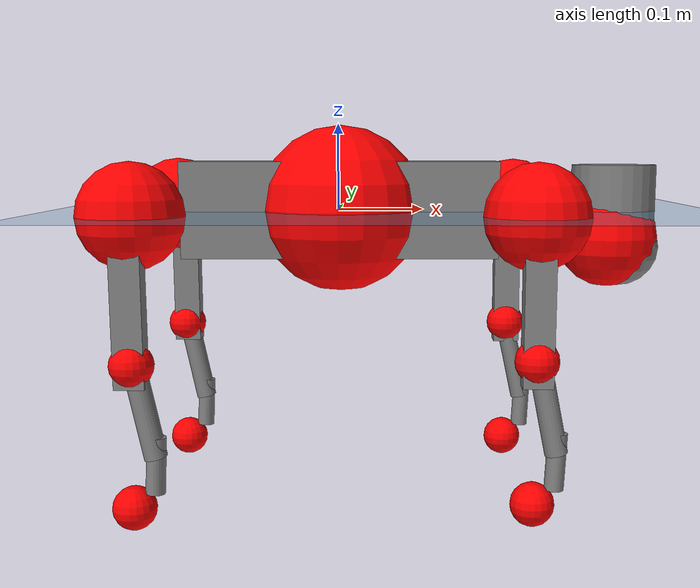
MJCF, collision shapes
<mujoco model="go2">
  <compiler angle="radian" assetdir="assets" balanceinertia="true" inertiafromgeom="false"/>

  <option timestep="0.005" density="1.2" viscosity="2e-05"/>

  <size nkey="1"/>

  <visual>
    <quality shadowsize="8192"/>
    <map shadowclip="0.5"/>
  </visual>

  <default>
    <default class="/">
      <geom contype="0" conaffinity="0" group="1" solref="-1000 -80"/>
      <site size="0.01 0.005 0.005" group="5"/>
      <general forcelimited="true" biastype="affine" gainprm="20" biasprm="0 -20 -0.5"/>
      <default class="go2">
        <joint armature="0.01" damping="0.01" frictionloss="0.2"/>
        <geom condim="1" margin="0.001"/>
        <default class="visual">
          <geom type="mesh" group="2"/>
        </default>
        <default class="collision">
          <geom group="3"/>
          <default class="foot">
            <geom size="0.022 0 0" condim="6" priority="1" friction="0.8 0.02 0.01" solimp="0.015 1 0.022"/>
          </default>
        </default>
        <default class="reward_collision_sphere">
          <geom group="5" rgba="1 0 0 1"/>
        </default>
      </default>
    </default>
  </default>

  <asset>
    <texture type="skybox" colorspace="auto" name="//unnamed_texture_0" builtin="gradient" rgb1="0.95 0.95 0.95" rgb2="0.95 0.95 0.95" width="100" height="600"/>
    <texture type="2d" colorspace="auto" name="texplane" builtin="checker" rgb1="0.345 0.575 0.748" rgb2="0.345 0.575 0.748" markrgb="1 1 1" width="512" height="512"/>
    <material name="MatPlane" class="/" texture="texplane" texuniform="true" texrepeat="2 2" specular="0.9"/>
    <material name="metal" class="/" rgba="0.9 0.95 0.95 1"/>
    <material name="black" class="/" rgba="0 0 0 1"/>
    <material name="white" class="/"/>
    <material name="gray" class="/" rgba="0.671705 0.692426 0.77427 1"/>
    <mesh name="base_0" class="/" file="base_0.obj"/>
    <mesh name="base_1" class="/" file="base_1.obj"/>
    <mesh name="base_2" class="/" file="base_2.obj"/>
    <mesh name="base_3" class="/" file="base_3.obj"/>
    <mesh name="base_4" class="/" file="base_4.obj"/>
    <mesh name="hip_0" class="/" file="hip_0.obj"/>
    <mesh name="hip_1" class="/" file="hip_1.obj"/>
    <mesh name="thigh_0" class="/" file="thigh_0.obj"/>
    <mesh name="thigh_1" class="/" file="thigh_1.obj"/>
    <mesh name="thigh_mirror_0" class="/" file="thigh_mirror_0.obj"/>
    <mesh name="thigh_mirror_1" class="/" file="thigh_mirror_1.obj"/>
    <mesh name="calf_0" class="/" file="calf_0.obj"/>
    <mesh name="calf_1" class="/" file="calf_1.obj"/>
    <mesh name="calf_mirror_0" class="/" file="calf_mirror_0.obj"/>
    <mesh name="calf_mirror_1" class="/" file="calf_mirror_1.obj"/>
    <mesh name="foot" class="/" file="foot.obj"/>
  </asset>

  <worldbody>
    <geom name="floor" class="/" size="100 100 0.125" type="plane" group="0" material="MatPlane"/>
    <light name="toplight_shadow" class="/" pos="0 0 5" dir="0.0990148 0.0990148 -0.990148" type="directional" ambient="0.04 0.04 0.04" diffuse="0.55 0.55 0.55" specular="0.12 0.12 0.12"/>
    <light name="toplight_fill" class="/" pos="0 0 5" dir="0.0990148 0.0990148 -0.990148" type="directional" castshadow="false" ambient="0.04 0.04 0.04" diffuse="0.3 0.3 0.3" specular="0.08 0.08 0.08"/>
    <body name="trunk" childclass="go2" pos="0.00259581 0.00109328 0.000659056" quat="1 6.55361e-05 -0.000144948 -0.000123086">
      <inertial pos="0.0242184 0.00040989 -0.00398325" quat="-0.0100401 0.714499 -0.00663837 0.699533" mass="6.60511" diaginertia="0.215476 0.137613 0.00587894"/>
      <joint name="//unnamed_joint_0" type="free" armature="0" damping="0" frictionloss="0"/>
      <geom name="//unnamed_geom_1" class="visual" material="black" mesh="base_0"/>
      <geom name="//unnamed_geom_2" class="visual" material="black" mesh="base_1"/>
      <geom name="//unnamed_geom_3" class="visual" material="black" mesh="base_2"/>
      <geom name="//unnamed_geom_4" class="visual" material="white" mesh="base_3"/>
      <geom name="//unnamed_geom_5" class="visual" material="gray" mesh="base_4"/>
      <geom name="trunk_1" class="collision" size="0.184627 0.0458867 0.0559474" type="box"/>
      <geom name="trunk_2" class="collision" size="0.0490767 0.044169" pos="0.323491 0 0.00752385" type="cylinder"/>
      <geom name="trunk_3" class="collision" size="0.0461321" pos="0.332571 0 -0.0451431"/>
      <geom name="//unnamed_geom_9" class="reward_collision_sphere" size="0.0981534"/>
      <geom name="//unnamed_geom_10" class="reward_collision_sphere" size="0.058892" pos="0.317816 0 -0.0338573"/>
      <site name="imu" pos="-0.0294229 0.00532356 0.0212266" size="0.00981534"/>
      <camera name="track" pos="0 -2.11432 0" quat="0.707107 0.707107 0 0" mode="trackcom"/>
      <camera name="ego_camera" pos="0.354137 0 0.0338573" quat="-0.5 -0.5 0.5 0.5"/>
      <body name="FL_hip" pos="0.218564 0.049334 -0.00174978" quat="0.999999 5.13465e-05 -0.000492555 -0.00111022">
        <inertial pos="-0.00852047 0.00111839 -0.000655717" quat="0.495964 0.499595 0.50583 0.498558" mass="0.645963" diaginertia="0.00167959 0.000759098 0.000117192"/>
        <joint name="FL_hip_joint" pos="0 0 0" axis="0.99998 -0.00587671 0.00233681" range="-1.03564 1.05004" armature="0.00880223" damping="0.00891958" frictionloss="0.214908"/>
        <geom name="//unnamed_geom_11" class="visual" material="metal" mesh="hip_0"/>
        <geom name="//unnamed_geom_12" class="visual" material="gray" mesh="hip_1"/>
        <geom name="//unnamed_geom_13" class="collision" size="0.0451506 0.0196307" pos="0 0.0845729 0" quat="0.707107 0.707107 0 0" type="cylinder"/>
        <geom name="//unnamed_geom_14" class="reward_collision_sphere" size="0.058892" pos="0 0.0740013 0"/>
        <body name="FL_thigh" pos="-0.00318361 0.100244 -0.00137549" quat="1 -0.000107185 -0.000297178 0.00094702">
          <inertial pos="-0.00373936 -0.0236585 -0.0264429" quat="0.825378 0.081739 -0.0179635 0.558343" mass="1.07744" diaginertia="0.0111579 0.00766042 0.00020954"/>
          <joint name="FL_thigh_joint" pos="0 0 0" axis="-0.0163319 0.999829 0.00870791" range="-1.54351 3.49068" armature="0.0113028" damping="0" frictionloss="0.17314"/>
          <geom name="//unnamed_geom_15" class="visual" material="metal" mesh="thigh_0"/>
          <geom name="//unnamed_geom_16" class="visual" material="gray" mesh="thigh_1"/>
          <geom name="//unnamed_geom_17" class="collision" size="0.104533 0.0120238 0.0166861" pos="0 0 -0.080129" quat="0.707107 0 0.707107 0" type="box"/>
          <body name="FL_calf" pos="-0.000756099 -0.00206564 -0.159319" quat="0.999999 0.000158827 -0.00138336 6.98083e-05">
            <inertial pos="0.00910107 0.000118355 -0.105523" quat="0.717719 -0.00440561 -0.00359412 0.69631" mass="0.242676" diaginertia="0.00279239 0.00199744 1.27553e-05"/>
            <joint name="FL_calf_joint" pos="0 0 0" axis="-0.000979835 0.999999 0.000293496" stiffness="0.00193835" range="-2.72804 -0.818554" armature="0.0101677" damping="0" frictionloss="0.187311"/>
            <geom name="//unnamed_geom_18" class="visual" material="gray" mesh="calf_0"/>
            <geom name="//unnamed_geom_19" class="visual" material="black" mesh="calf_1"/>
            <geom name="FL_calf0" class="collision" size="0.0117784 0.058892" pos="0.00908045 0 -0.0451431" quat="0.994493 0 -0.104807 0" type="cylinder"/>
            <geom name="//unnamed_geom_21" class="collision" size="0.0107969 0.0318999" pos="0.0227011 0 -0.111353" quat="0.999688 0 0.0249974 0" type="cylinder"/>
            <geom name="//unnamed_geom_22" class="visual" pos="0 0 -0.160258" quat="1 0 0 0" material="black" mesh="foot"/>
            <geom name="FL_foot" class="foot" size="0.021253" pos="-0.00227011 0 -0.160258"/>
            <geom name="//unnamed_geom_24" class="reward_collision_sphere" size="0.0245384"/>
            <geom name="//unnamed_geom_25" class="reward_collision_sphere" size="0.0245384" pos="-0.00227011 0 -0.160258"/>
            <site name="FL_foot" class="foot" pos="-0.00227011 0 -0.160258" size="0.00981534"/>
          </body>
        </body>
      </body>
      <body name="FR_hip" pos="0.217857 -0.04722 -0.00179525" quat="1 0.000213576 -2.07955e-05 0.000338774">
        <inertial pos="-0.00411804 -0.00184286 -0.00184797" quat="0.49227 0.514388 0.493197 0.499832" mass="0.650252" diaginertia="0.00172136 0.000781807 0.000118685"/>
        <joint name="FR_hip_joint" pos="0 0 0" axis="0.999921 0.00343475 0.0120611" range="-1.09698 1.02853" armature="0.00971076" damping="0.0181094" frictionloss="0.169127"/>
        <geom name="//unnamed_geom_26" class="visual" pos="0 2.65509e-09 1.13882e-07" quat="4.63268e-05 1 0 0" material="metal" mesh="hip_0"/>
        <geom name="//unnamed_geom_27" class="visual" pos="0 4.30422e-09 -2.81675e-07" quat="4.63268e-05 1 0 0" material="gray" mesh="hip_1"/>
        <geom name="//unnamed_geom_28" class="collision" size="0.0451506 0.0196307" pos="0 -0.0845729 0" quat="0.707107 0.707107 0 0" type="cylinder"/>
        <geom name="//unnamed_geom_29" class="reward_collision_sphere" size="0.058892" pos="0 -0.0740013 0"/>
        <body name="FR_thigh" pos="-0.000109374 -0.099393 0.0032004" quat="1 -4.7051e-05 5.46919e-05 -5.02659e-05">
          <inertial pos="-0.00593601 0.0251716 -0.0244451" quat="0.551796 -0.0191926 0.0835145 0.829565" mass="1.09483" diaginertia="0.0113403 0.00766547 0.000213267"/>
          <joint name="FR_thigh_joint" pos="0 0 0" axis="0.00969163 -0.999918 -0.00838687" stiffness="0.00305899" range="-3.47131 1.60843" armature="0.00982571" damping="0.0050181" frictionloss="0.188457"/>
          <geom name="//unnamed_geom_30" class="visual" material="metal" mesh="thigh_mirror_0"/>
          <geom name="//unnamed_geom_31" class="visual" material="gray" mesh="thigh_mirror_1"/>
          <geom name="//unnamed_geom_32" class="collision" size="0.104533 0.0120238 0.0166861" pos="0 0 -0.080129" quat="0.707107 0 0.707107 0" type="box"/>
          <body name="FR_calf" pos="-0.000222699 0.00119413 -0.157049" quat="1 -0.000366897 -0.000109335 0.000878923">
            <inertial pos="0.00851967 -0.00184726 -0.103819" quat="0.705895 -0.00542683 -0.00140461 0.708294" mass="0.223205" diaginertia="0.00291576 0.00202399 1.32976e-05"/>
            <joint name="FR_calf_joint" pos="0 0 0" axis="0.00915706 -0.999915 0.00933081" stiffness="0.00971395" range="0.791933 2.73017" armature="0.00926586" damping="0.0204822" frictionloss="0.222496"/>
            <geom name="//unnamed_geom_33" class="visual" material="gray" mesh="calf_mirror_0"/>
            <geom name="//unnamed_geom_34" class="visual" material="black" mesh="calf_mirror_1"/>
            <geom name="FR_calf0" class="collision" size="0.0127599 0.058892" pos="0.0113506 0 -0.0451431" quat="0.995004 0 -0.0998334 0" type="cylinder"/>
            <geom name="//unnamed_geom_36" class="collision" size="0.0107969 0.0318999" pos="0.0227011 0 -0.111353" quat="0.999688 0 0.0249974 0" type="cylinder"/>
            <geom name="//unnamed_geom_37" class="visual" pos="0 0 -0.160258" quat="1 0 0 0" material="black" mesh="foot"/>
            <geom name="FR_foot" class="foot" size="0.0208351" pos="-0.00227011 0 -0.160258"/>
            <geom name="//unnamed_geom_39" class="reward_collision_sphere" size="0.0245384"/>
            <geom name="//unnamed_geom_40" class="reward_collision_sphere" size="0.0245384" pos="-0.00227011 0 -0.160258"/>
            <site name="FR_foot" class="foot" pos="-0.00227011 0 -0.160258" size="0.00981534"/>
          </body>
        </body>
      </body>
      <body name="RL_hip" pos="-0.218511 0.0462244 -0.00043514" quat="1 -0.000456117 -8.56988e-05 -0.000102769">
        <inertial pos="0.00841136 0.000472062 0.000485146" quat="0.513625 0.498871 0.486467 0.500667" mass="0.624549" diaginertia="0.00166415 0.000781744 0.000111471"/>
        <joint name="RL_hip_joint" pos="0 0 0" axis="-0.999953 -0.000155866 -0.00974316" stiffness="0.00143902" range="-0.992838 1.06303" armature="0.00983189" damping="0.0187957" frictionloss="0.189881"/>
        <geom name="//unnamed_geom_41" class="visual" pos="-3.33367e-09 0 -6.53477e-07" quat="4.63268e-05 0 1 0" material="metal" mesh="hip_0"/>
        <geom name="//unnamed_geom_42" class="visual" pos="-5.40428e-09 0 -5.79541e-07" quat="4.63268e-05 0 1 0" material="gray" mesh="hip_1"/>
        <geom name="//unnamed_geom_43" class="collision" size="0.0451506 0.0196307" pos="0 0.0845729 0" quat="0.707107 0.707107 0 0" type="cylinder"/>
        <geom name="//unnamed_geom_44" class="reward_collision_sphere" size="0.058892" pos="0 0.0740013 0"/>
        <body name="RL_thigh" pos="0.00242545 0.102073 -0.00112996" quat="1 0.000415006 7.65637e-06 -0.000309096">
          <inertial pos="-0.00478005 -0.021393 -0.0249681" quat="0.822579 0.079423 -0.0211441 0.56268" mass="1.11802" diaginertia="0.0112072 0.00793493 0.000214486"/>
          <joint name="RL_thigh_joint" pos="0 0 0" axis="0.00948997 0.999951 -0.00279417" range="-0.468809 4.58973" armature="0.0109777" damping="0.00449017" frictionloss="0.223368"/>
          <geom name="//unnamed_geom_45" class="visual" material="metal" mesh="thigh_0"/>
          <geom name="//unnamed_geom_46" class="visual" material="gray" mesh="thigh_1"/>
          <geom name="//unnamed_geom_47" class="collision" size="0.104533 0.0120238 0.0166861" pos="0 0 -0.080129" quat="0.707107 0 0.707107 0" type="box"/>
          <body name="RL_calf" pos="-0.0026471 0.00234407 -0.162524" quat="1 -0.000681268 -9.4163e-05 -0.000433949">
            <inertial pos="0.00631146 -0.000278938 -0.105006" quat="0.715747 0.00913447 -0.00783871 0.698256" mass="0.222192" diaginertia="0.00281028 0.0019022 1.29186e-05"/>
            <joint name="RL_calf_joint" pos="0 0 0" axis="0.0178626 0.999793 0.00975796" range="-2.73269 -0.888035" armature="0.00956946" damping="0.00517675" frictionloss="0.168655"/>
            <geom name="//unnamed_geom_48" class="visual" material="gray" mesh="calf_0"/>
            <geom name="//unnamed_geom_49" class="visual" material="black" mesh="calf_1"/>
            <geom name="RL_calf0" class="collision" size="0.0127599 0.058892" pos="0.0113506 0 -0.0451431" quat="0.995004 0 -0.0998334 0" type="cylinder"/>
            <geom name="//unnamed_geom_51" class="collision" size="0.0107969 0.0318999" pos="0.0227011 0 -0.111353" quat="0.999688 0 0.0249974 0" type="cylinder"/>
            <geom name="//unnamed_geom_52" class="visual" pos="0 0 -0.160258" quat="1 0 0 0" material="black" mesh="foot"/>
            <geom name="RL_foot" class="foot" size="0.0173978" pos="-0.00227011 0 -0.160258"/>
            <geom name="//unnamed_geom_54" class="reward_collision_sphere" size="0.0245384"/>
            <geom name="//unnamed_geom_55" class="reward_collision_sphere" size="0.0245384" pos="-0.00227011 0 -0.160258"/>
            <site name="RL_foot" class="foot" pos="-0.00227011 0 -0.160258" size="0.00981534"/>
          </body>
        </body>
      </body>
      <body name="RR_hip" pos="-0.221105 -0.0498374 -0.000998936" quat="1 -0.00037228 -4.92158e-05 1.70999e-05">
        <inertial pos="0.00889163 4.53341e-05 0.000644271" quat="0.503402 0.487572 0.501239 0.507562" mass="0.650135" diaginertia="0.00173435 0.000822378 0.000120789"/>
        <joint name="RR_hip_joint" pos="0 0 0" axis="-0.999951 0.00912216 -0.00395522" range="-1.05005 1.05482" armature="0.00942905" damping="0.0139615" frictionloss="0.200757"/>
        <geom name="//unnamed_geom_56" class="visual" pos="3.33098e-09 2.65509e-09 -7.67359e-07" quat="2.14617e-09 4.63268e-05 4.63268e-05 -1" material="metal" mesh="hip_0"/>
        <geom name="//unnamed_geom_57" class="visual" pos="5.41095e-09 4.30422e-09 -2.97866e-07" quat="2.14617e-09 4.63268e-05 4.63268e-05 -1" material="gray" mesh="hip_1"/>
        <geom name="//unnamed_geom_58" class="collision" size="0.0451506 0.0196307" pos="0 -0.0845729 0" quat="0.707107 0.707107 0 0" type="cylinder"/>
        <geom name="//unnamed_geom_59" class="reward_collision_sphere" size="0.058892" pos="0 -0.0740013 0"/>
        <body name="RR_thigh" pos="0.000505723 -0.101784 0.00134331" quat="1 0.00070521 -3.11108e-05 0.000204544">
          <inertial pos="-0.00458407 0.0242567 -0.0244562" quat="0.556897 -0.0196925 0.09002 0.825454" mass="1.10189" diaginertia="0.0112989 0.00803529 0.000217668"/>
          <joint name="RR_thigh_joint" pos="0 0 0" axis="-0.0120037 -0.999922 -0.00352594" range="-4.53115 0.53991" armature="0.0110344" damping="0.00126563" frictionloss="0.177121"/>
          <geom name="//unnamed_geom_60" class="visual" material="metal" mesh="thigh_mirror_0"/>
          <geom name="//unnamed_geom_61" class="visual" material="gray" mesh="thigh_mirror_1"/>
          <geom name="//unnamed_geom_62" class="collision" size="0.104533 0.0120238 0.0166861" pos="0 0 -0.080129" quat="0.707107 0 0.707107 0" type="box"/>
          <body name="RR_calf" pos="0.000709347 0.000934282 -0.159961" quat="1 8.70734e-05 2.10723e-05 -4.86322e-05">
            <inertial pos="0.00442195 -0.00126061 -0.104297" quat="0.704872 -0.00587642 0.00151917 0.709308" mass="0.238849" diaginertia="0.00274419 0.00202122 1.29161e-05"/>
            <joint name="RR_calf_joint" pos="0 0 0" axis="-0.000767438 -1 0.000559857" range="0.821038 2.76973" armature="0.00976461" damping="0.0122624" frictionloss="0.21788"/>
            <geom name="//unnamed_geom_63" class="visual" material="gray" mesh="calf_mirror_0"/>
            <geom name="//unnamed_geom_64" class="visual" material="black" mesh="calf_mirror_1"/>
            <geom name="RR_calf0" class="collision" size="0.0127599 0.058892" pos="0.0113506 0 -0.0451431" quat="0.995004 0 -0.0998334 0" type="cylinder"/>
            <geom name="//unnamed_geom_66" class="collision" size="0.0107969 0.0318999" pos="0.0227011 0 -0.111353" quat="0.999688 0 0.0249974 0" type="cylinder"/>
            <geom name="//unnamed_geom_67" class="visual" pos="0 0 -0.160258" quat="1 0 0 0" material="black" mesh="foot"/>
            <geom name="RR_foot" class="foot" size="0.0227945" pos="-0.00227011 0 -0.160258"/>
            <geom name="//unnamed_geom_69" class="reward_collision_sphere" size="0.0245384"/>
            <geom name="//unnamed_geom_70" class="reward_collision_sphere" size="0.0245384" pos="-0.00227011 0 -0.160258"/>
            <site name="RR_foot" class="foot" pos="-0.00227011 0 -0.160258" size="0.00981534"/>
          </body>
        </body>
      </body>
    </body>
  </worldbody>

  <contact>
    <pair class="/" geom1="floor" geom2="FL_foot" name="//unnamed_contact_0"/>
    <pair class="/" geom1="floor" geom2="FR_foot" name="//unnamed_contact_1"/>
    <pair class="/" geom1="floor" geom2="RL_foot" name="//unnamed_contact_2"/>
    <pair class="/" geom1="floor" geom2="RR_foot" name="//unnamed_contact_3"/>
  </contact>

  <actuator>
    <general name="FL_hip" class="/" joint="FL_hip_joint" forcerange="-23.2972 23.2972" gainprm="19.6517" biasprm="0 -19.6517 -0.491891"/>
    <general name="FL_thigh" class="/" joint="FL_thigh_joint" forcerange="-20.89 20.89" gainprm="19.6517" biasprm="0 -19.6517 -0.491891"/>
    <general name="FL_calf" class="/" joint="FL_calf_joint" forcerange="-47.5988 47.5988" gainprm="19.6517" biasprm="0 -19.6517 -0.491891"/>
    <general name="FR_hip" class="/" joint="FR_hip_joint" forcerange="-23.3794 23.3794" gainprm="19.6517" biasprm="0 -19.6517 -0.491891"/>
    <general name="FR_thigh" class="/" joint="FR_thigh_joint" forcerange="-22.3655 22.3655" gainprm="19.6517" biasprm="0 -19.6517 -0.491891"/>
    <general name="FR_calf" class="/" joint="FR_calf_joint" forcerange="-48.6772 48.6772" gainprm="19.6517" biasprm="0 -19.6517 -0.491891"/>
    <general name="RL_hip" class="/" joint="RL_hip_joint" forcerange="-23.4252 23.4252" gainprm="19.6517" biasprm="0 -19.6517 -0.491891"/>
    <general name="RL_thigh" class="/" joint="RL_thigh_joint" forcerange="-25.5579 25.5579" gainprm="19.6517" biasprm="0 -19.6517 -0.491891"/>
    <general name="RL_calf" class="/" joint="RL_calf_joint" forcerange="-41.2707 41.2707" gainprm="19.6517" biasprm="0 -19.6517 -0.491891"/>
    <general name="RR_hip" class="/" joint="RR_hip_joint" forcerange="-23.6557 23.6557" gainprm="19.6517" biasprm="0 -19.6517 -0.491891"/>
    <general name="RR_thigh" class="/" joint="RR_thigh_joint" forcerange="-23.4284 23.4284" gainprm="19.6517" biasprm="0 -19.6517 -0.491891"/>
    <general name="RR_calf" class="/" joint="RR_calf_joint" forcerange="-41.8479 41.8479" gainprm="19.6517" biasprm="0 -19.6517 -0.491891"/>
  </actuator>

  <sensor>
    <gyro site="imu" name="imu_angular_velocity"/>
    <velocimeter site="imu" name="imu_linear_velocity"/>
    <framelinvel objtype="site" objname="FL_foot" name="FL_foot_global_linear_velocity"/>
    <framelinvel objtype="site" objname="FR_foot" name="FR_foot_global_linear_velocity"/>
    <framelinvel objtype="site" objname="RL_foot" name="RL_foot_global_linear_velocity"/>
    <framelinvel objtype="site" objname="RR_foot" name="RR_foot_global_linear_velocity"/>
  </sensor>

  <keyframe>
    <key name="home" qpos="0 0 0.325 1 0 0 0 0.1 0.8 -1.5 -0.1 -0.8 1.5 -0.1 0.8 -1.5 0.1 -0.8 1.5"/>
  </keyframe>
</mujoco>
